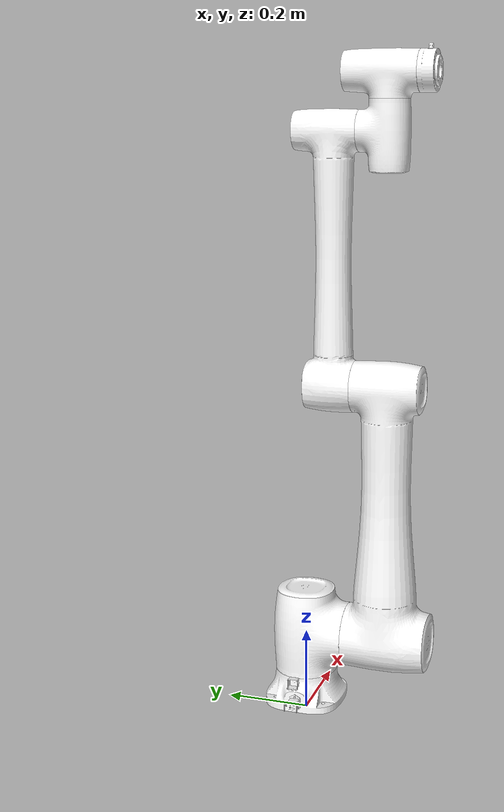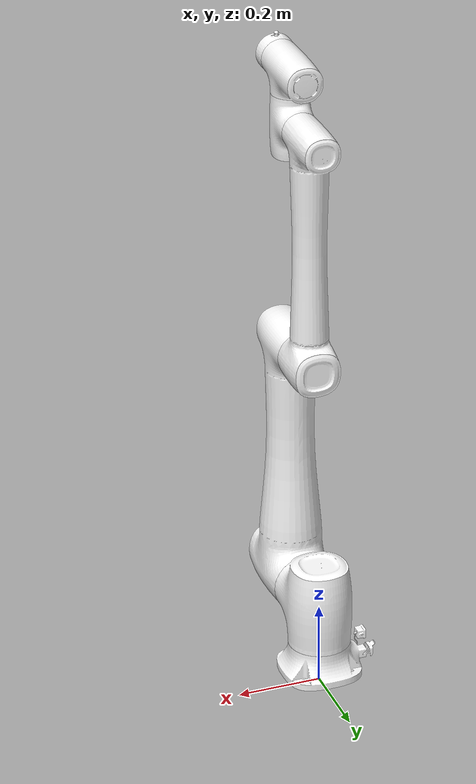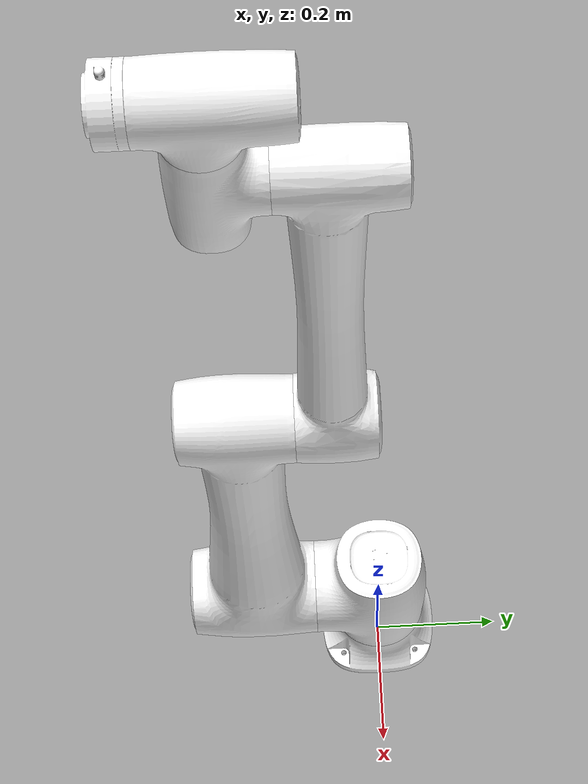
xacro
<?xml version="1.0"?>
<robot name="cr10_robot" xmlns:xacro="http://ros.org/wiki/xacro">

  <link name="dummy_link"/>
  <link name="base_link">
    <inertial>
      <origin
        xyz="-0.0017435 -4.7141E-06 0.032774" rpy="0 0 0" />
      <mass
        value="1.8265" />
      <inertia
        ixx="0.0041731"
        ixy="5.9354E-07"
        ixz="2.52E-05"
        iyy="0.0043128"
        iyz="-5.4503E-07"
        izz="0.0067702" />
    </inertial>
    <visual>
      <origin
        xyz="0 0 0"
        rpy="0 0 0" />
      <geometry>
        <mesh
          filename="file://$(find cra_description)/meshes/cr10/base_link.STL" />
      </geometry>
      <material
        name="">
        <color
          rgba="1 1 1 1" />
      </material>
    </visual>
    <collision>
      <origin
        xyz="0 0 0"
        rpy="0 0 0" />
      <geometry>
        <mesh
          filename="file://$(find cra_description)/meshes/cr10/base_link.STL" />
      </geometry>
    </collision>
  </link>
  <link  name="world"/>
<joint name="world_joint" type="fixed">
    <origin xyz="0 0 0.03" rpy="0 0 0" />
    <parent link="world" />
    <child  link="dummy_link" />
  </joint>

  <joint name="dummy_joint" type="fixed">
    <parent link="dummy_link" />
    <child  link="base_link" />
  </joint>

  <link
    name="Link1">
    <inertial>
      <origin
        xyz="-1.6635E-06 -0.010819 0.0028389"
        rpy="0 0 0" />
      <mass
        value="4.1649" />
      <inertia
        ixx="0.020714"
        ixy="-1.9343E-07"
        ixz="1.6036E-07"
        iyy="0.018824"
        iyz="-9.6731E-05"
        izz="0.014575" />
    </inertial>
    <visual>
      <origin
        xyz="0 0 0"
        rpy="0 0 0" />
      <geometry>
        <mesh
          filename="file://$(find cra_description)/meshes/cr10/Link1.STL" />
      </geometry>
      <material
        name="">
        <color
          rgba="1 1 1 1" />
      </material>
    </visual>
    <collision>
      <origin
        xyz="0 0 0"
        rpy="0 0 0" />
      <geometry>
        <mesh
          filename="file://$(find cra_description)/meshes/cr10/Link1.STL" />
      </geometry>
    </collision>
  </link>
  <joint
    name="joint1"
    type="revolute">
    <origin
      xyz="0 0 0.1765"
      rpy="0 0 0" />
    <parent
      link="base_link" />
    <child
      link="Link1" />
    <axis
      xyz="0 0 1" />
    <limit
      lower="-6.27"
      upper="6.27"
      effort="300"
      velocity="100" />
  </joint>
  <link
    name="Link2">
    <inertial>
      <origin
        xyz="-0.24631 3.5816E-07 0.19515"
        rpy="0 0 0" />
      <mass
        value="11.314" />
      <inertia
        ixx="0.033616"
        ixy="-8.2998E-07"
        ixz="-0.0033352"
        iyy="0.30683"
        iyz="-6.6457E-08"
        izz="0.29972" />
    </inertial>
    <visual>
      <origin
        xyz="0 0 0"
        rpy="0 0 0" />
      <geometry>
        <mesh
          filename="file://$(find cra_description)/meshes/cr10/Link2.STL"  />
      </geometry>
      <material
        name="">
        <color
          rgba="1 1 1 1" />
      </material>
    </visual>
    <collision>
      <origin
        xyz="0 0 0"
        rpy="0 0 0" />
      <geometry>
        <mesh
          filename="file://$(find cra_description)/meshes/cr10/Link2.STL" />
      </geometry>
    </collision>
  </link>
  <joint
    name="joint2"
    type="revolute">
    <origin
      xyz="0 0 0"
      rpy="1.5708 1.5708 0" />
    <parent
      link="Link1" />
    <child
      link="Link2" />
    <axis
      xyz="0 0 1" />
    <limit
      lower="-6.27"
      upper="6.27"
      effort="300"
      velocity="100" />
  </joint>
  <link
    name="Link3">
    <inertial>
      <origin
        xyz="-0.270855859955203 2.5144690851208E-07 0.0622960395387155"
        rpy="0 0 0" />
      <mass
        value="4.89191189064363" />
      <inertia
        ixx="0.00715720724136357"
        ixy="-5.62017408817872E-07"
        ixz="-0.00257748068989916"
        iyy="0.239673426443838"
        iyz="9.26228295895878E-08"
        izz="0.238369168055991" />
    </inertial>
    <visual>
      <origin
        xyz="0 0 0"
        rpy="0 0 0" />
      <geometry>
        <mesh
          filename="file://$(find cra_description)/meshes/cr10/Link3.STL"  />
      </geometry>
      <material
        name="">
        <color
          rgba="1 1 1 1" />
      </material>
    </visual>
    <collision>
      <origin
        xyz="0 0 0"
        rpy="0 0 0" />
      <geometry>
        <mesh
          filename="file://$(find cra_description)/meshes/cr10/Link3.STL" />
      </geometry>
    </collision>
  </link>
  <joint
    name="joint3"
    type="revolute">
    <origin
      xyz="-0.607 0 0"
      rpy="0 0 0" />
    <parent
      link="Link2" />
    <child
      link="Link3" />
    <axis
      xyz="0 0 1" />
    <limit
      lower="-2.861"
      upper="2.861"
      effort="300"
      velocity="100" />
  </joint>
  <link
    name="Link4">
    <inertial>
      <origin
        xyz="-2.53137491438456E-07 0.00798724498566683 -0.00589074229668524"
        rpy="0 0 0" />
      <mass
        value="1.16884294495796" />
      <inertia
        ixx="0.00292614933092813"
        ixy="8.20440076221281E-09"
        ixz="-8.19990423351321E-09"
        iyy="0.00150052997722543"
        iyz="-5.4492521866877E-05"
        izz="0.00273274943535585" />
    </inertial>
    <visual>
      <origin
        xyz="0 0 0"
        rpy="0 0 0" />
      <geometry>
        <mesh
          filename="file://$(find cra_description)/meshes/cr10/Link4.STL"/>
      </geometry>
      <material
        name="">
        <color
          rgba="1 1 1 1" />
      </material>
    </visual>
    <collision>
      <origin
        xyz="0 0 0"
        rpy="0 0 0" />
      <geometry>
        <mesh
          filename="file://$(find cra_description)/meshes/cr10/Link4.STL"  />
      </geometry>
    </collision>
  </link>
  <joint
    name="joint4"
    type="revolute">
    <origin
      xyz="-0.568 0 0.191"
      rpy="0 0 -1.5708" />
    <parent
      link="Link3" />
    <child
      link="Link4" />
    <axis
      xyz="0 0 1" />
    <limit
      lower="-6.27"
      upper="6.27"
      effort="300"
      velocity="100" />
  </joint>
  <link
    name="Link5">
    <inertial>
      <origin
        xyz="5.50699455951951E-07 -0.0145467578029201 -0.00454887087411437"
        rpy="0 0 0" />
      <mass
        value="1.22303084244711" />
      <inertia
        ixx="0.00337905462069531"
        ixy="3.57819902464362E-08"
        ixz="-7.51828060542842E-09"
        iyy="0.00149255573951137"
        iyz="8.41917918947542E-05"
        izz="0.00323300312341709" />
    </inertial>
    <visual>
      <origin
        xyz="0 0 0"
        rpy="0 0 0" />
      <geometry>
        <mesh
          filename="file://$(find cra_description)/meshes/cr10/Link5.STL" />
      </geometry>
      <material
        name="">
        <color
          rgba="1 1 1 1" />
      </material>
    </visual>
    <collision>
      <origin
        xyz="0 0 0"
        rpy="0 0 0" />
      <geometry>
        <mesh
          filename="file://$(find cra_description)/meshes/cr10/Link5.STL" />
      </geometry>
    </collision>
  </link>
  <joint
    name="joint5"
    type="revolute">
    <origin
      xyz="0 -0.125 0"
      rpy="1.5708 0 0" />
    <parent
      link="Link4" />
    <child
      link="Link5" />
    <axis
      xyz="0 0 1" />
    <limit
      lower="-6.27"
      upper="6.27"
      effort="300"
      velocity="100" />
  </joint>
  <link
    name="Link6">
    <inertial>
      <origin
        xyz="1.42987471244488E-10 2.29640694859867E-05 -0.0205297780389956"
        rpy="0 0 0" />
      <mass
        value="0.205439548775225" />
      <inertia
        ixx="0.000110115425573789"
        ixy="-8.21487875808426E-14"
        ixz="4.28615843947113E-14"
        iyy="0.000110662465957898"
        iyz="3.68879932665237E-08"
        izz="0.00020518429573024" />
    </inertial>
    <visual>
      <origin
        xyz="0 0 0"
        rpy="0 0 0" />
      <geometry>
        <mesh
          filename="file://$(find cra_description)/meshes/cr10/Link6.STL" />
      </geometry>
      <material
        name="">
        <color
          rgba="1 1 1 1" />
      </material>
    </visual>
    <collision>
      <origin
        xyz="0 0 0"
        rpy="0 0 0" />
      <geometry>
        <mesh
          filename="file://$(find cra_description)/meshes/cr10/Link6.STL" />
      </geometry>
    </collision>
  </link>
  <joint
    name="joint6"
    type="revolute">
    <origin
      xyz="0 0.1084 0"
      rpy="-1.5708 0 0" />
    <parent
      link="Link5" />
    <child
      link="Link6" />
    <axis
      xyz="0 0 1" />
    <limit
      lower="-6.27"
      upper="6.27"
      effort="300"
      velocity="100" />
  </joint>
<gazebo reference="base_link">
        <gravity>false</gravity>
        <selfCollide>true</selfCollide>
    </gazebo>
    <gazebo reference="Link1">
        <gravity>false</gravity>
        <selfCollide>true</selfCollide>
    </gazebo>
    <gazebo reference="Link2">
        <gravity>false</gravity>
        <selfCollide>true</selfCollide>
    </gazebo>
    <gazebo reference="Link3">
        <gravity>false</gravity>
        <selfCollide>true</selfCollide>
    </gazebo>
    <gazebo reference="Link4">
        <gravity>false</gravity>
        <selfCollide>true</selfCollide>
    </gazebo>
    <gazebo reference="Link5">
        <gravity>false</gravity>
        <selfCollide>true</selfCollide>
    </gazebo>
    <gazebo reference="Link6">
        <gravity>false</gravity>
        <selfCollide>true</selfCollide>
    </gazebo>
    <!-- 在运行demo.launch.py时，需要注释这个ros2_control节点，因为它使用了xxx.ros2_control.xacro来生成了ros2_control节点-->
    <ros2_control name="GazeboSystem" type="system">
        <hardware>
            <plugin>gz_ros2_control/GazeboSimSystem</plugin>
        </hardware>
        <joint name="joint1">
            <command_interface name="position">
                <param name="min">-1</param>
                <param name="max">1</param>
            </command_interface>
            <state_interface name="position">
                <param name="initial_value">0.0</param>
            </state_interface>
            <state_interface name="velocity"/>
        </joint>
        <joint name="joint2">
            <command_interface name="position">
                <param name="min">-1</param>
                <param name="max">1</param>
            </command_interface>
            <state_interface name="position">
                <param name="initial_value">0.0</param>
            </state_interface>
            <state_interface name="velocity"/>
        </joint>
        <joint name="joint3">
            <command_interface name="position">
                <param name="min">-1</param>
                <param name="max">1</param>
            </command_interface>
            <state_interface name="position">
                <param name="initial_value">0.0</param>
            </state_interface>
            <state_interface name="velocity"/>
        </joint>
        <joint name="joint4">
            <command_interface name="position">
                <param name="min">-1</param>
                <param name="max">1</param>
            </command_interface>
            <state_interface name="position">
                <param name="initial_value">0.0</param>
            </state_interface>
            <state_interface name="velocity"/>
        </joint>
        <joint name="joint5">
            <command_interface name="position">
                <param name="min">-1</param>
                <param name="max">1</param>
            </command_interface>
            <state_interface name="position">
                <param name="initial_value">0.0</param>
            </state_interface>
            <state_interface name="velocity"/>
        </joint>
        <joint name="joint6">
            <command_interface name="position">
                <param name="min">-1</param>
                <param name="max">1</param>
            </command_interface>
            <state_interface name="position">
                <param name="initial_value">0.0</param>
            </state_interface>
            <state_interface name="velocity"/>
        </joint>
    </ros2_control>

    <gazebo>
        <plugin filename="gz_ros2_control-system" name="gz_ros2_control::GazeboSimROS2ControlPlugin">
            <parameters>$(find cr10_moveit)/config/ros2_controllers.yaml</parameters>
            <robot_param_node>robot_state_publisher</robot_param_node>
        </plugin>
    </gazebo>

</robot>
